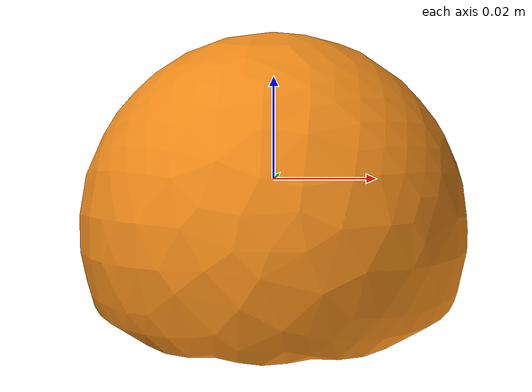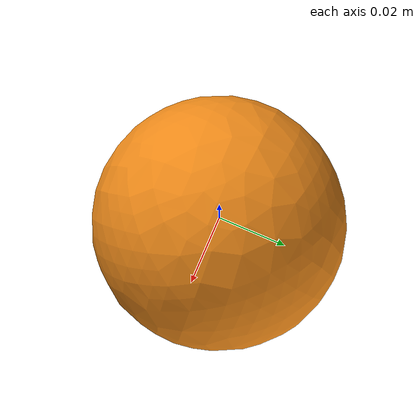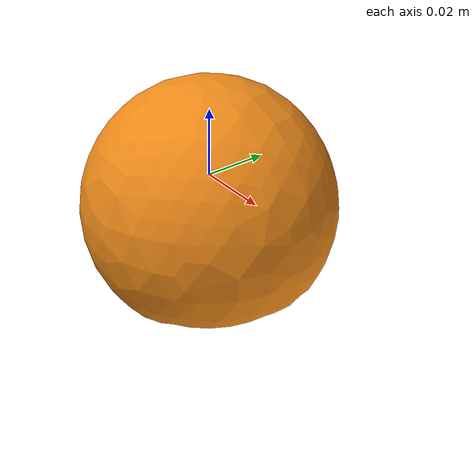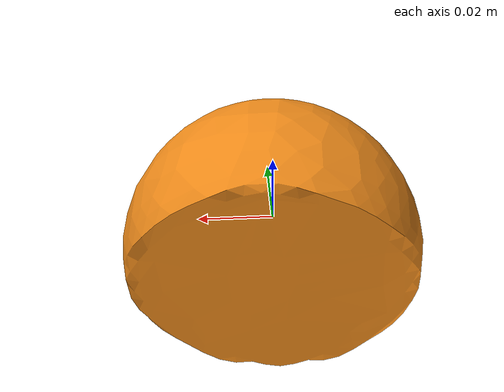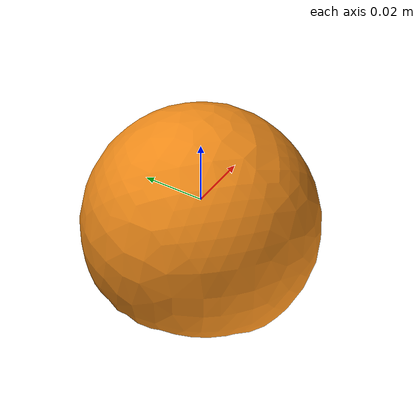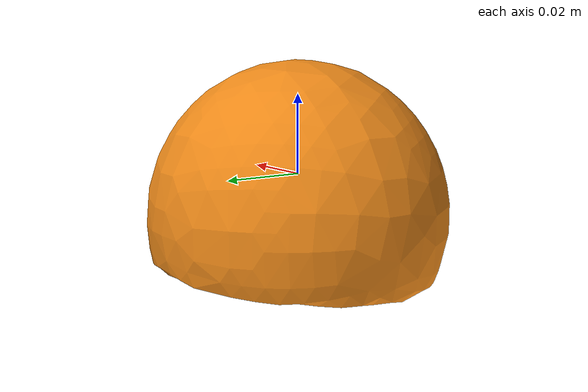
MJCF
<mujoco model="orange_0">
  <asset>
    <mesh file="visual/model_normalized_0.obj" name="orange_0_model_normalized_0_vis" scale="0.07499999999999997 0.07499999999999997 0.07499999999999997" refquat="-1.1102230246251565e-16 1.0 0.0 0.0" />
    <mesh file="collision/model_normalized_collision_22.obj" name="orange_0_model_normalized_collision_22._coll" scale="0.07499999999999997 0.07499999999999997 0.07499999999999997" refquat="-1.1102230246251565e-16 1.0 0.0 0.0" />
    <mesh file="collision/model_normalized_collision_23.obj" name="orange_0_model_normalized_collision_23._coll" scale="0.07499999999999997 0.07499999999999997 0.07499999999999997" refquat="-1.1102230246251565e-16 1.0 0.0 0.0" />
    <mesh file="collision/model_normalized_collision_21.obj" name="orange_0_model_normalized_collision_21._coll" scale="0.07499999999999997 0.07499999999999997 0.07499999999999997" refquat="-1.1102230246251565e-16 1.0 0.0 0.0" />
    <mesh file="collision/model_normalized_collision_20.obj" name="orange_0_model_normalized_collision_20._coll" scale="0.07499999999999997 0.07499999999999997 0.07499999999999997" refquat="-1.1102230246251565e-16 1.0 0.0 0.0" />
    <mesh file="collision/model_normalized_collision_24.obj" name="orange_0_model_normalized_collision_24._coll" scale="0.07499999999999997 0.07499999999999997 0.07499999999999997" refquat="-1.1102230246251565e-16 1.0 0.0 0.0" />
    <mesh file="collision/model_normalized_collision_30.obj" name="orange_0_model_normalized_collision_30._coll" scale="0.07499999999999997 0.07499999999999997 0.07499999999999997" refquat="-1.1102230246251565e-16 1.0 0.0 0.0" />
    <mesh file="collision/model_normalized_collision_18.obj" name="orange_0_model_normalized_collision_18._coll" scale="0.07499999999999997 0.07499999999999997 0.07499999999999997" refquat="-1.1102230246251565e-16 1.0 0.0 0.0" />
    <mesh file="collision/model_normalized_collision_19.obj" name="orange_0_model_normalized_collision_19._coll" scale="0.07499999999999997 0.07499999999999997 0.07499999999999997" refquat="-1.1102230246251565e-16 1.0 0.0 0.0" />
    <mesh file="collision/model_normalized_collision_31.obj" name="orange_0_model_normalized_collision_31._coll" scale="0.07499999999999997 0.07499999999999997 0.07499999999999997" refquat="-1.1102230246251565e-16 1.0 0.0 0.0" />
    <mesh file="collision/model_normalized_collision_25.obj" name="orange_0_model_normalized_collision_25._coll" scale="0.07499999999999997 0.07499999999999997 0.07499999999999997" refquat="-1.1102230246251565e-16 1.0 0.0 0.0" />
    <mesh file="collision/model_normalized_collision_27.obj" name="orange_0_model_normalized_collision_27._coll" scale="0.07499999999999997 0.07499999999999997 0.07499999999999997" refquat="-1.1102230246251565e-16 1.0 0.0 0.0" />
    <mesh file="collision/model_normalized_collision_26.obj" name="orange_0_model_normalized_collision_26._coll" scale="0.07499999999999997 0.07499999999999997 0.07499999999999997" refquat="-1.1102230246251565e-16 1.0 0.0 0.0" />
    <mesh file="collision/model_normalized_collision_9.obj" name="orange_0_model_normalized_collision_9._coll" scale="0.07499999999999997 0.07499999999999997 0.07499999999999997" refquat="-1.1102230246251565e-16 1.0 0.0 0.0" />
    <mesh file="collision/model_normalized_collision_8.obj" name="orange_0_model_normalized_collision_8._coll" scale="0.07499999999999997 0.07499999999999997 0.07499999999999997" refquat="-1.1102230246251565e-16 1.0 0.0 0.0" />
    <mesh file="collision/model_normalized_collision_6.obj" name="orange_0_model_normalized_collision_6._coll" scale="0.07499999999999997 0.07499999999999997 0.07499999999999997" refquat="-1.1102230246251565e-16 1.0 0.0 0.0" />
    <mesh file="collision/model_normalized_collision_7.obj" name="orange_0_model_normalized_collision_7._coll" scale="0.07499999999999997 0.07499999999999997 0.07499999999999997" refquat="-1.1102230246251565e-16 1.0 0.0 0.0" />
    <mesh file="collision/model_normalized_collision_5.obj" name="orange_0_model_normalized_collision_5._coll" scale="0.07499999999999997 0.07499999999999997 0.07499999999999997" refquat="-1.1102230246251565e-16 1.0 0.0 0.0" />
    <mesh file="collision/model_normalized_collision_4.obj" name="orange_0_model_normalized_collision_4._coll" scale="0.07499999999999997 0.07499999999999997 0.07499999999999997" refquat="-1.1102230246251565e-16 1.0 0.0 0.0" />
    <mesh file="collision/model_normalized_collision_0.obj" name="orange_0_model_normalized_collision_0._coll" scale="0.07499999999999997 0.07499999999999997 0.07499999999999997" refquat="-1.1102230246251565e-16 1.0 0.0 0.0" />
    <mesh file="collision/model_normalized_collision_1.obj" name="orange_0_model_normalized_collision_1._coll" scale="0.07499999999999997 0.07499999999999997 0.07499999999999997" refquat="-1.1102230246251565e-16 1.0 0.0 0.0" />
    <mesh file="collision/model_normalized_collision_3.obj" name="orange_0_model_normalized_collision_3._coll" scale="0.07499999999999997 0.07499999999999997 0.07499999999999997" refquat="-1.1102230246251565e-16 1.0 0.0 0.0" />
    <mesh file="collision/model_normalized_collision_2.obj" name="orange_0_model_normalized_collision_2._coll" scale="0.07499999999999997 0.07499999999999997 0.07499999999999997" refquat="-1.1102230246251565e-16 1.0 0.0 0.0" />
    <mesh file="collision/model_normalized_collision_17.obj" name="orange_0_model_normalized_collision_17._coll" scale="0.07499999999999997 0.07499999999999997 0.07499999999999997" refquat="-1.1102230246251565e-16 1.0 0.0 0.0" />
    <mesh file="collision/model_normalized_collision_16.obj" name="orange_0_model_normalized_collision_16._coll" scale="0.07499999999999997 0.07499999999999997 0.07499999999999997" refquat="-1.1102230246251565e-16 1.0 0.0 0.0" />
    <mesh file="collision/model_normalized_collision_28.obj" name="orange_0_model_normalized_collision_28._coll" scale="0.07499999999999997 0.07499999999999997 0.07499999999999997" refquat="-1.1102230246251565e-16 1.0 0.0 0.0" />
    <mesh file="collision/model_normalized_collision_14.obj" name="orange_0_model_normalized_collision_14._coll" scale="0.07499999999999997 0.07499999999999997 0.07499999999999997" refquat="-1.1102230246251565e-16 1.0 0.0 0.0" />
    <mesh file="collision/model_normalized_collision_15.obj" name="orange_0_model_normalized_collision_15._coll" scale="0.07499999999999997 0.07499999999999997 0.07499999999999997" refquat="-1.1102230246251565e-16 1.0 0.0 0.0" />
    <mesh file="collision/model_normalized_collision_29.obj" name="orange_0_model_normalized_collision_29._coll" scale="0.07499999999999997 0.07499999999999997 0.07499999999999997" refquat="-1.1102230246251565e-16 1.0 0.0 0.0" />
    <mesh file="collision/model_normalized_collision_11.obj" name="orange_0_model_normalized_collision_11._coll" scale="0.07499999999999997 0.07499999999999997 0.07499999999999997" refquat="-1.1102230246251565e-16 1.0 0.0 0.0" />
    <mesh file="collision/model_normalized_collision_10.obj" name="orange_0_model_normalized_collision_10._coll" scale="0.07499999999999997 0.07499999999999997 0.07499999999999997" refquat="-1.1102230246251565e-16 1.0 0.0 0.0" />
    <mesh file="collision/model_normalized_collision_12.obj" name="orange_0_model_normalized_collision_12._coll" scale="0.07499999999999997 0.07499999999999997 0.07499999999999997" refquat="-1.1102230246251565e-16 1.0 0.0 0.0" />
    <mesh file="collision/model_normalized_collision_13.obj" name="orange_0_model_normalized_collision_13._coll" scale="0.07499999999999997 0.07499999999999997 0.07499999999999997" refquat="-1.1102230246251565e-16 1.0 0.0 0.0" />
    <texture type="2d" name="orange_0_image0" file="visual/image0.png" />
    <material name="orange_0_orange_halb3DC_null_color" texture="orange_0_image0" specular="0.5" shininess="0.15999998099999999" />
  </asset>
  <worldbody>
    <body>
      <joint name="orange_0_object_joint" type="free" damping="1." /><body name="orange_0_object">
        <geom solimp="0.998 0.998 0.001" solref="0.001 1" density="300" friction="0.95 0.3 0.1" type="mesh" mesh="orange_0_model_normalized_0_vis" conaffinity="0" contype="0" group="1" material="orange_0_orange_halb3DC_null_color" />
        <geom solimp="0.998 0.998 0.001" solref="0.001 1" density="300" friction="0.95 0.3 0.1" type="mesh" mesh="orange_0_model_normalized_collision_22._coll" group="0" rgba="0.8 0.8 0.8 0.0" />
        <geom solimp="0.998 0.998 0.001" solref="0.001 1" density="300" friction="0.95 0.3 0.1" type="mesh" mesh="orange_0_model_normalized_collision_23._coll" group="0" rgba="0.8 0.8 0.8 0.0" />
        <geom solimp="0.998 0.998 0.001" solref="0.001 1" density="300" friction="0.95 0.3 0.1" type="mesh" mesh="orange_0_model_normalized_collision_21._coll" group="0" rgba="0.8 0.8 0.8 0.0" />
        <geom solimp="0.998 0.998 0.001" solref="0.001 1" density="300" friction="0.95 0.3 0.1" type="mesh" mesh="orange_0_model_normalized_collision_20._coll" group="0" rgba="0.8 0.8 0.8 0.0" />
        <geom solimp="0.998 0.998 0.001" solref="0.001 1" density="300" friction="0.95 0.3 0.1" type="mesh" mesh="orange_0_model_normalized_collision_24._coll" group="0" rgba="0.8 0.8 0.8 0.0" />
        <geom solimp="0.998 0.998 0.001" solref="0.001 1" density="300" friction="0.95 0.3 0.1" type="mesh" mesh="orange_0_model_normalized_collision_30._coll" group="0" rgba="0.8 0.8 0.8 0.0" />
        <geom solimp="0.998 0.998 0.001" solref="0.001 1" density="300" friction="0.95 0.3 0.1" type="mesh" mesh="orange_0_model_normalized_collision_18._coll" group="0" rgba="0.8 0.8 0.8 0.0" />
        <geom solimp="0.998 0.998 0.001" solref="0.001 1" density="300" friction="0.95 0.3 0.1" type="mesh" mesh="orange_0_model_normalized_collision_19._coll" group="0" rgba="0.8 0.8 0.8 0.0" />
        <geom solimp="0.998 0.998 0.001" solref="0.001 1" density="300" friction="0.95 0.3 0.1" type="mesh" mesh="orange_0_model_normalized_collision_31._coll" group="0" rgba="0.8 0.8 0.8 0.0" />
        <geom solimp="0.998 0.998 0.001" solref="0.001 1" density="300" friction="0.95 0.3 0.1" type="mesh" mesh="orange_0_model_normalized_collision_25._coll" group="0" rgba="0.8 0.8 0.8 0.0" />
        <geom solimp="0.998 0.998 0.001" solref="0.001 1" density="300" friction="0.95 0.3 0.1" type="mesh" mesh="orange_0_model_normalized_collision_27._coll" group="0" rgba="0.8 0.8 0.8 0.0" />
        <geom solimp="0.998 0.998 0.001" solref="0.001 1" density="300" friction="0.95 0.3 0.1" type="mesh" mesh="orange_0_model_normalized_collision_26._coll" group="0" rgba="0.8 0.8 0.8 0.0" />
        <geom solimp="0.998 0.998 0.001" solref="0.001 1" density="300" friction="0.95 0.3 0.1" type="mesh" mesh="orange_0_model_normalized_collision_9._coll" group="0" rgba="0.8 0.8 0.8 0.0" />
        <geom solimp="0.998 0.998 0.001" solref="0.001 1" density="300" friction="0.95 0.3 0.1" type="mesh" mesh="orange_0_model_normalized_collision_8._coll" group="0" rgba="0.8 0.8 0.8 0.0" />
        <geom solimp="0.998 0.998 0.001" solref="0.001 1" density="300" friction="0.95 0.3 0.1" type="mesh" mesh="orange_0_model_normalized_collision_6._coll" group="0" rgba="0.8 0.8 0.8 0.0" />
        <geom solimp="0.998 0.998 0.001" solref="0.001 1" density="300" friction="0.95 0.3 0.1" type="mesh" mesh="orange_0_model_normalized_collision_7._coll" group="0" rgba="0.8 0.8 0.8 0.0" />
        <geom solimp="0.998 0.998 0.001" solref="0.001 1" density="300" friction="0.95 0.3 0.1" type="mesh" mesh="orange_0_model_normalized_collision_5._coll" group="0" rgba="0.8 0.8 0.8 0.0" />
        <geom solimp="0.998 0.998 0.001" solref="0.001 1" density="300" friction="0.95 0.3 0.1" type="mesh" mesh="orange_0_model_normalized_collision_4._coll" group="0" rgba="0.8 0.8 0.8 0.0" />
        <geom solimp="0.998 0.998 0.001" solref="0.001 1" density="300" friction="0.95 0.3 0.1" type="mesh" mesh="orange_0_model_normalized_collision_0._coll" group="0" rgba="0.8 0.8 0.8 0.0" />
        <geom solimp="0.998 0.998 0.001" solref="0.001 1" density="300" friction="0.95 0.3 0.1" type="mesh" mesh="orange_0_model_normalized_collision_1._coll" group="0" rgba="0.8 0.8 0.8 0.0" />
        <geom solimp="0.998 0.998 0.001" solref="0.001 1" density="300" friction="0.95 0.3 0.1" type="mesh" mesh="orange_0_model_normalized_collision_3._coll" group="0" rgba="0.8 0.8 0.8 0.0" />
        <geom solimp="0.998 0.998 0.001" solref="0.001 1" density="300" friction="0.95 0.3 0.1" type="mesh" mesh="orange_0_model_normalized_collision_2._coll" group="0" rgba="0.8 0.8 0.8 0.0" />
        <geom solimp="0.998 0.998 0.001" solref="0.001 1" density="300" friction="0.95 0.3 0.1" type="mesh" mesh="orange_0_model_normalized_collision_17._coll" group="0" rgba="0.8 0.8 0.8 0.0" />
        <geom solimp="0.998 0.998 0.001" solref="0.001 1" density="300" friction="0.95 0.3 0.1" type="mesh" mesh="orange_0_model_normalized_collision_16._coll" group="0" rgba="0.8 0.8 0.8 0.0" />
        <geom solimp="0.998 0.998 0.001" solref="0.001 1" density="300" friction="0.95 0.3 0.1" type="mesh" mesh="orange_0_model_normalized_collision_28._coll" group="0" rgba="0.8 0.8 0.8 0.0" />
        <geom solimp="0.998 0.998 0.001" solref="0.001 1" density="300" friction="0.95 0.3 0.1" type="mesh" mesh="orange_0_model_normalized_collision_14._coll" group="0" rgba="0.8 0.8 0.8 0.0" />
        <geom solimp="0.998 0.998 0.001" solref="0.001 1" density="300" friction="0.95 0.3 0.1" type="mesh" mesh="orange_0_model_normalized_collision_15._coll" group="0" rgba="0.8 0.8 0.8 0.0" />
        <geom solimp="0.998 0.998 0.001" solref="0.001 1" density="300" friction="0.95 0.3 0.1" type="mesh" mesh="orange_0_model_normalized_collision_29._coll" group="0" rgba="0.8 0.8 0.8 0.0" />
        <geom solimp="0.998 0.998 0.001" solref="0.001 1" density="300" friction="0.95 0.3 0.1" type="mesh" mesh="orange_0_model_normalized_collision_11._coll" group="0" rgba="0.8 0.8 0.8 0.0" />
        <geom solimp="0.998 0.998 0.001" solref="0.001 1" density="300" friction="0.95 0.3 0.1" type="mesh" mesh="orange_0_model_normalized_collision_10._coll" group="0" rgba="0.8 0.8 0.8 0.0" />
        <geom solimp="0.998 0.998 0.001" solref="0.001 1" density="300" friction="0.95 0.3 0.1" type="mesh" mesh="orange_0_model_normalized_collision_12._coll" group="0" rgba="0.8 0.8 0.8 0.0" />
        <geom solimp="0.998 0.998 0.001" solref="0.001 1" density="300" friction="0.95 0.3 0.1" type="mesh" mesh="orange_0_model_normalized_collision_13._coll" group="0" rgba="0.8 0.8 0.8 0.0" />
      </body>

    </body>
  </worldbody>
</mujoco>
